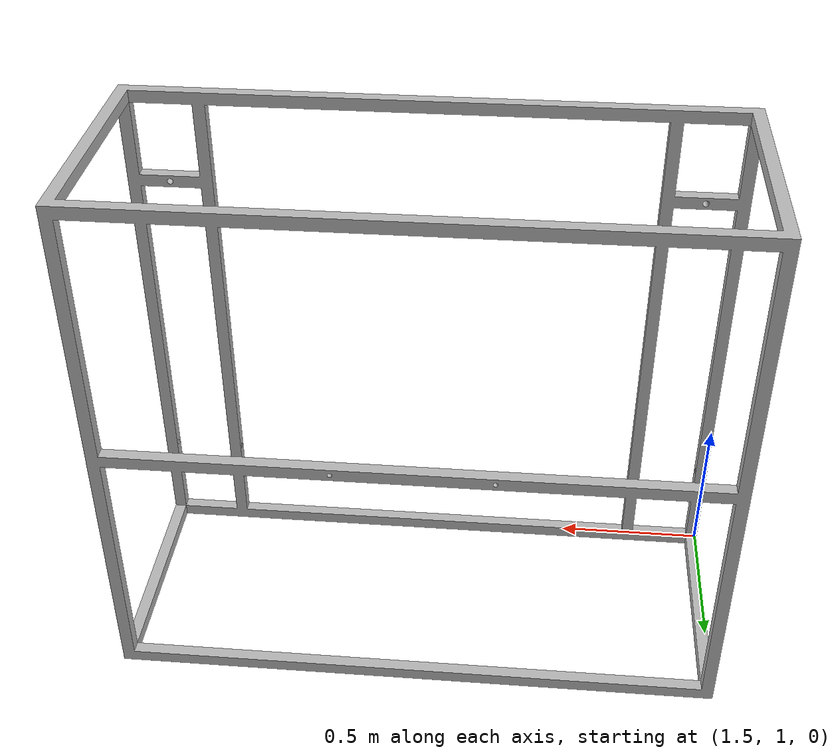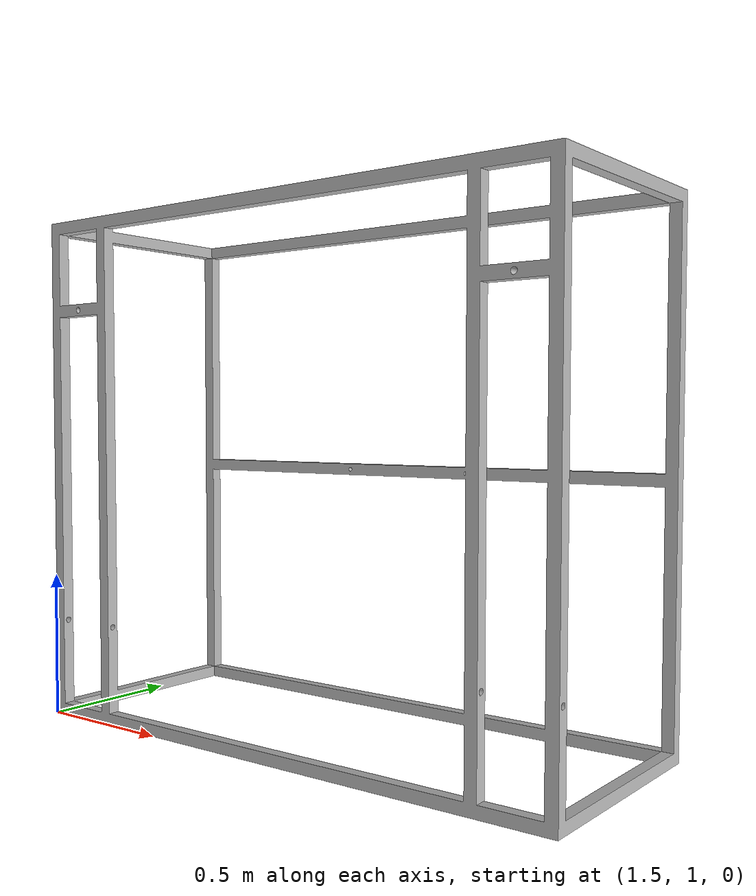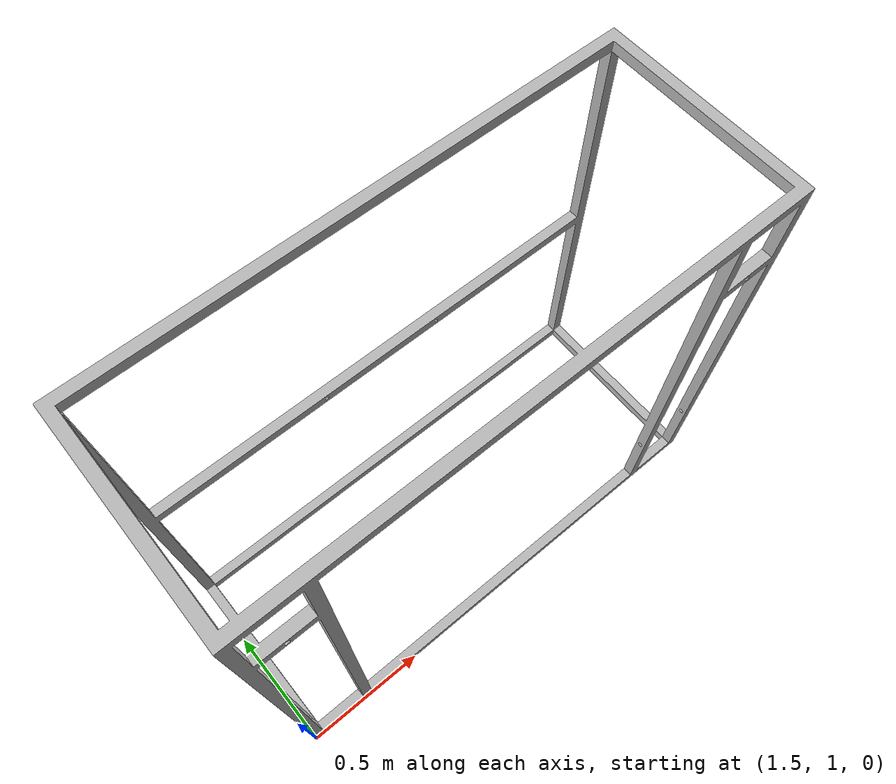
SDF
<sdf version='1.7'>
  <model name='robot'>
    <joint name='base_joint' type='fixed'>
      <pose relative_to='__model__'>1.5 1 0 0 -0 0</pose>
      <parent>world</parent>
      <child>slider_link</child>
    </joint>
    <link name='slider_link'>
      <pose relative_to='base_joint'>0 0 0 0 -0 0</pose>
      <inertial>
        <pose>0 0 0.075 0 -0 0</pose>
        <mass>0.5</mass>
        <inertia>
          <ixx>0.00354167</ixx>
          <ixy>0</ixy>
          <ixz>0</ixz>
          <iyy>0.0113542</iyy>
          <iyz>0</iyz>
          <izz>0.0130208</izz>
        </inertia>
      </inertial>
      <collision name='slider_link_collision'>
        <pose>0 0 0 0 -0 0</pose>
        <geometry>
          <mesh>
            <scale>1 1 1</scale>
            <uri>model://stormfield/description/meshes/stl/Frame_1000.stl</uri>
          </mesh>
        </geometry>
      </collision>
      <visual name='slider_link_visual'>
        <pose>0 0 0 0 -0 0</pose>
        <geometry>
          <mesh>
            <scale>1 1 1</scale>
            <uri>model://stormfield/description/meshes/stl/Frame_1000.stl</uri>
          </mesh>
        </geometry>
      </visual>
    </link>
  </model>
</sdf>
